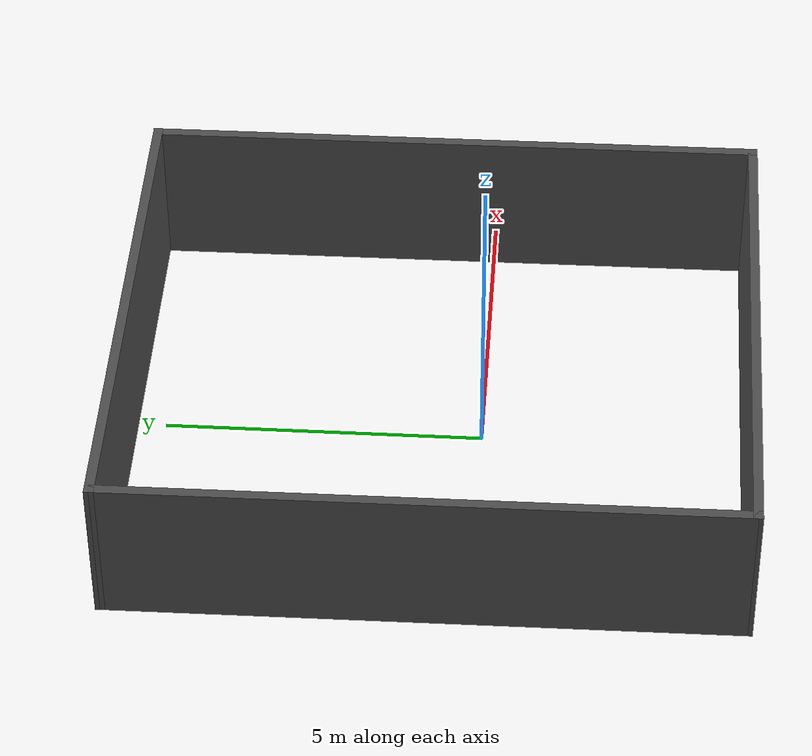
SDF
<?xml version='1.0'?>
<sdf version='1.7'>
  <model name='my_walls_1'>
    <pose>0.200511 0.689805 0 0 -0 0</pose>
    <link name='Wall_5'>
      <collision name='Wall_5_Collision'>
        <geometry>
          <box>
            <size>9.79783 0.15 2.5</size>
          </box>
        </geometry>
        <pose>0 0 1.25 0 -0 0</pose>
      </collision>
      <visual name='Wall_5_Visual'>
        <pose>0 0 1.25 0 -0 0</pose>
        <geometry>
          <box>
            <size>9.79783 0.15 2.5</size>
          </box>
        </geometry>
        <material>
          <script>
            <uri>model://my_walls_1/materials/scripts</uri>
            <uri>model://my_walls_1/materials/textures</uri>
            <name>vrc/my_asphalt</name>
          </script>
        </material>
        <meta>
          <layer>0</layer>
        </meta>
      </visual>
      <pose>4.0845 -0.0133 0 0 -0 -1.56804</pose>
    </link>
    <link name='Wall_6'>
      <collision name='Wall_6_Collision'>
        <geometry>
          <box>
            <size>8.31904 0.15 2.5</size>
          </box>
        </geometry>
        <pose>0 0 1.25 0 -0 0</pose>
      </collision>
      <visual name='Wall_6_Visual'>
        <pose>0 0 1.25 0 -0 0</pose>
        <geometry>
          <box>
            <size>8.31904 0.15 2.5</size>
          </box>
        </geometry>
        <material>
          <script>
            <uri>model://my_walls_1/materials/scripts</uri>
            <uri>model://my_walls_1/materials/textures</uri>
            <name>vrc/my_asphalt</name>
          </script>
        </material>
        <meta>
          <layer>0</layer>
        </meta>
      </visual>
      <pose>0.0133 -4.8239 0 0 -0 3.13834</pose>
    </link>
    <link name='Wall_7'>
      <collision name='Wall_7_Collision'>
        <geometry>
          <box>
            <size>9.79783 0.15 2.5</size>
          </box>
        </geometry>
        <pose>0 0 1.25 0 -0 0</pose>
      </collision>
      <visual name='Wall_7_Visual'>
        <pose>0 0 1.25 0 -0 0</pose>
        <geometry>
          <box>
            <size>9.79783 0.15 2.5</size>
          </box>
        </geometry>
        <material>
          <script>
            <uri>model://my_walls_1/materials/scripts</uri>
            <uri>model://my_walls_1/materials/textures</uri>
            <name>vrc/my_asphalt</name>
          </script>
        </material>
        <meta>
          <layer>0</layer>
        </meta>
      </visual>
      <pose>-4.0845 0.0133 0 0 -0 1.57355</pose>
    </link>
    <link name='Wall_8'>
      <collision name='Wall_8_Collision'>
        <geometry>
          <box>
            <size>8.31904 0.15 2.5</size>
          </box>
        </geometry>
        <pose>0 0 1.25 0 -0 0</pose>
      </collision>
      <visual name='Wall_8_Visual'>
        <pose>0 0 1.25 0 -0 0</pose>
        <geometry>
          <box>
            <size>8.31904 0.15 2.5</size>
          </box>
        </geometry>
        <material>
          <script>
            <uri>model://my_walls_1/materials/scripts</uri>
            <uri>model://my_walls_1/materials/textures</uri>
            <name>vrc/my_asphalt</name>
          </script>
        </material>
        <meta>
          <layer>0</layer>
        </meta>
      </visual>
      <pose>-0.0133 4.8239 0 0 -0 -0.003256</pose>
    </link>
    <static>1</static>
  </model>
</sdf>
